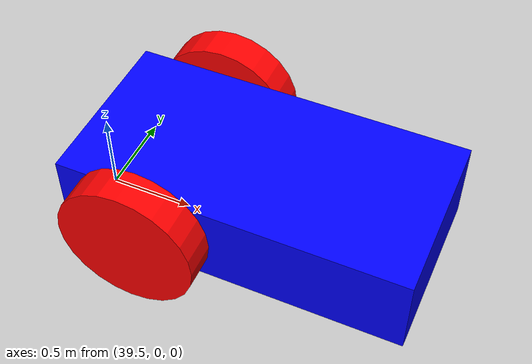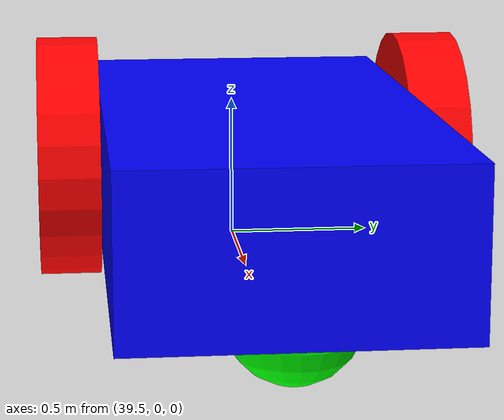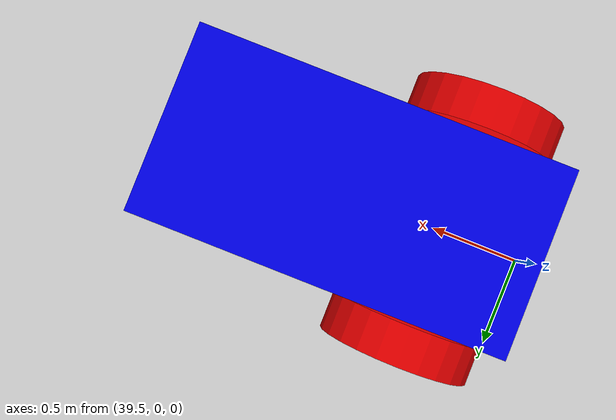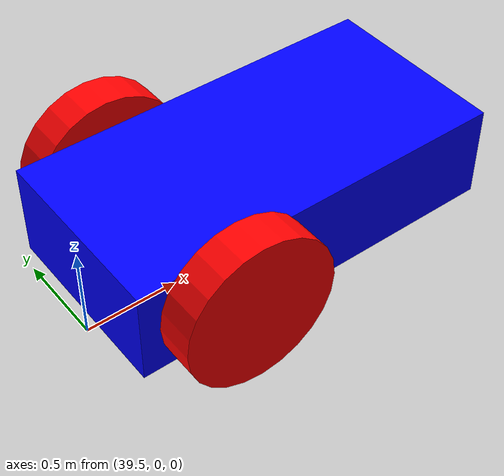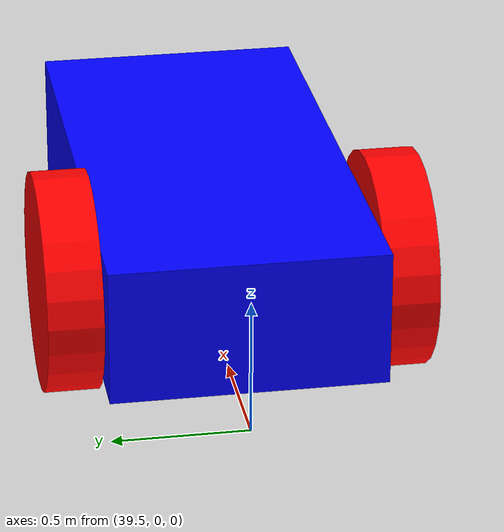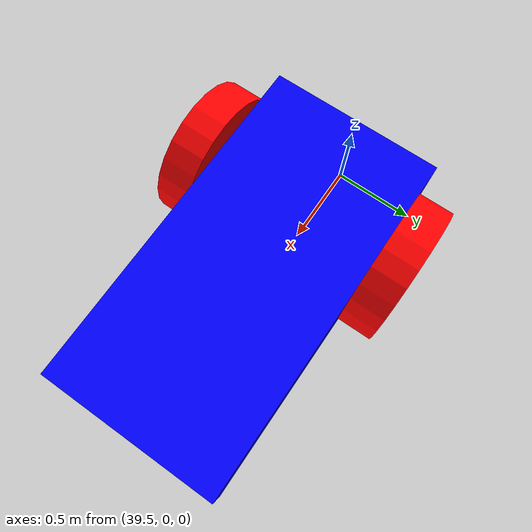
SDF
<sdf version="1.6">
 <world name="default">
  <light name="sun" type="directional">
   <pose>0 0 10 0 -0 0</pose>
   <diffuse>1 1 1 1</diffuse>
   <specular>0.2 0.2 0.2 1</specular>
   <attenuation>
    <range>1000</range>
    <constant>0.9</constant>
    <linear>0.01</linear>
    <quadratic>0.001</quadratic>
   </attenuation>
   <direction>-0.5 -0.5 -1</direction>
  </light>
  <physics name="default_physics" default="0" type="ode">
   <max_step_size>0.001</max_step_size>
   <real_time_factor>1</real_time_factor>
   <real_time_update_rate>1000</real_time_update_rate>
  </physics>
  <plugin filename="gz-sim-physics-system" name="gz::sim::systems::Physics"/>
  <plugin filename="gz-sim-user-commands-system" name="gz::sim::systems::UserCommands"/>
  <plugin filename="gz-sim-scene-broadcaster-system" name="gz::sim::systems::SceneBroadcaster"/>
  <scene><ambient>1 1 1 1</ambient><background>1 1 1 1</background><shadows>1</shadows></scene>
  <spherical_coordinates>
   <surface_model>EARTH_WGS84</surface_model>
   <latitude_deg>0</latitude_deg>
   <longitude_deg>0</longitude_deg>
   <elevation>0</elevation>
   <heading_deg>0</heading_deg>
  </spherical_coordinates>
  <gravity>0 0 -9.8</gravity>
  <magnetic_field>6e-06 2.3e-05 -4.2e-05</magnetic_field>
  <atmosphere type="adiabatic"/>
  <audio><device>default</device></audio>
  <model name="vehicle_blue" canonical_link="chassis">
   <pose relative_to="world">40 0 0 0 0 0</pose>
   <link name="chassis">
    <pose relative_to="__model__">0.5 0 0.4 0 0 0</pose>
    <inertial>
     <mass>1.14395</mass>
     <inertia>
      <ixx>0.126164</ixx>
      <ixy>0</ixy>
      <ixz>0</ixz>
      <iyy>0.416519</iyy>
      <iyz>0</iyz>
      <izz>0.481014</izz>
     </inertia>
    </inertial>
    <visual name="visual">
     <geometry><box><size>2.0 1.0 0.5</size></box></geometry>
     <material>
      <ambient>0.0 0.0 1.0 1</ambient>
      <diffuse>0.0 0.0 1.0 1</diffuse>
      <specular>0.0 0.0 1.0 1</specular>
     </material>
    </visual>
    <collision name="collision"><geometry><box><size>2.0 1.0 0.5</size></box></geometry></collision>
   </link>
   <link name="left_wheel">
    <pose relative_to="chassis">-0.5 0.6 0 -1.5707 0 0</pose>
    <inertial>
     <mass>2</mass>
     <inertia><ixx>0.145833</ixx><ixy>0</ixy><ixz>0</ixz><iyy>0.145833</iyy><iyz>0</iyz><izz>0.125</izz></inertia>
    </inertial>
    <visual name="visual">
     <geometry><cylinder><radius>0.4</radius><length>0.2</length></cylinder></geometry>
     <material>
      <ambient>1.0 0.0 0.0 1</ambient>
      <diffuse>1.0 0.0 0.0 1</diffuse>
      <specular>1.0 0.0 0.0 1</specular>
     </material>
    </visual>
    <collision name="collision">
     <geometry><cylinder><radius>0.4</radius><length>0.2</length></cylinder></geometry>
    </collision>
   </link>
   <link name="right_wheel">
    <pose relative_to="chassis">-0.5 -0.6 0 -1.5707 0 0</pose>
    <inertial>
     <mass>1</mass>
     <inertia><ixx>0.145833</ixx><ixy>0</ixy><ixz>0</ixz><iyy>0.145833</iyy><iyz>0</iyz><izz>0.125</izz></inertia>
    </inertial>
    <visual name="visual">
     <geometry><cylinder><radius>0.4</radius><length>0.2</length></cylinder></geometry>
     <material>
      <ambient>1.0 0.0 0.0 1</ambient>
      <diffuse>1.0 0.0 0.0 1</diffuse>
      <specular>1.0 0.0 0.0 1</specular>
     </material>
    </visual>
    <collision name="collision">
     <geometry><cylinder><radius>0.4</radius><length>0.2</length></cylinder></geometry>
    </collision>
   </link>
   <frame name="caster_frame" attached_to="chassis"><pose>0.8 0 -0.2 0 0 0</pose></frame>
   <link name="caster">
    <pose relative_to="caster_frame"/>
    <inertial>
     <mass>1</mass>
     <inertia><ixx>0.1</ixx><ixy>0</ixy><ixz>0</ixz><iyy>0.1</iyy><iyz>0</iyz><izz>0.1</izz></inertia>
    </inertial>
    <visual name="visual">
     <geometry><sphere><radius>0.2</radius></sphere></geometry>
     <material>
      <ambient>0.0 1 0.0 1</ambient>
      <diffuse>0.0 1 0.0 1</diffuse>
      <specular>0.0 1 0.0 1</specular>
     </material>
    </visual>
    <collision name="collision"><geometry><sphere><radius>0.2</radius></sphere></geometry></collision>
   </link>
   <joint name="left_wheel_joint" type="revolute">
    <pose relative_to="left_wheel"/>
    <parent>chassis</parent>
    <child>left_wheel</child>
    <axis>
     <xyz expressed_in="__model__">0 1 0</xyz>
     <limit><lower>-1.79769e+308</lower><upper>1.79769e+308</upper></limit>
    </axis>
   </joint>
   <joint name="right_wheel_joint" type="revolute">
    <pose relative_to="right_wheel"/>
    <parent>chassis</parent>
    <child>right_wheel</child>
    <axis>
     <xyz expressed_in="__model__">0 1 0</xyz>
     <limit><lower>-1.79769e+308</lower><upper>1.79769e+308</upper></limit>
    </axis>
   </joint>
   <joint name="caster_wheel" type="ball"><parent>chassis</parent><child>caster</child></joint>
   <plugin filename="gz-sim-diff-drive-system" name="gz::sim::systems::DiffDrive">
    <left_joint>left_wheel_joint</left_joint>
    <right_joint>right_wheel_joint</right_joint>
    <wheel_separation>1.2</wheel_separation>
    <wheel_radius>0.4</wheel_radius>
    <odom_publish_frequency>1</odom_publish_frequency>
    <topic>cmd_vel</topic>
   </plugin>
  </model>
  <plugin filename="gz-sim-triggered-publisher-system" name="gz::sim::systems::TriggeredPublisher">
   <input type="gz.msgs.Int32" topic="/keyboard/keypress"><match field="data">82</match></input>
   <output type="gz.msgs.Twist" topic="/cmd_vel">linear: {x: 2}, angular: {z: 0.4}</output>
  </plugin>
  <plugin filename="gz-sim-triggered-publisher-system" name="gz::sim::systems::TriggeredPublisher">
   <input type="gz.msgs.Int32" topic="/keyboard/keypress"><match field="data">83</match></input>
   <output type="gz.msgs.Twist" topic="/cmd_vel">linear: {x: 0}, angular: {z: 0}</output>
  </plugin>
 </world>
</sdf>
